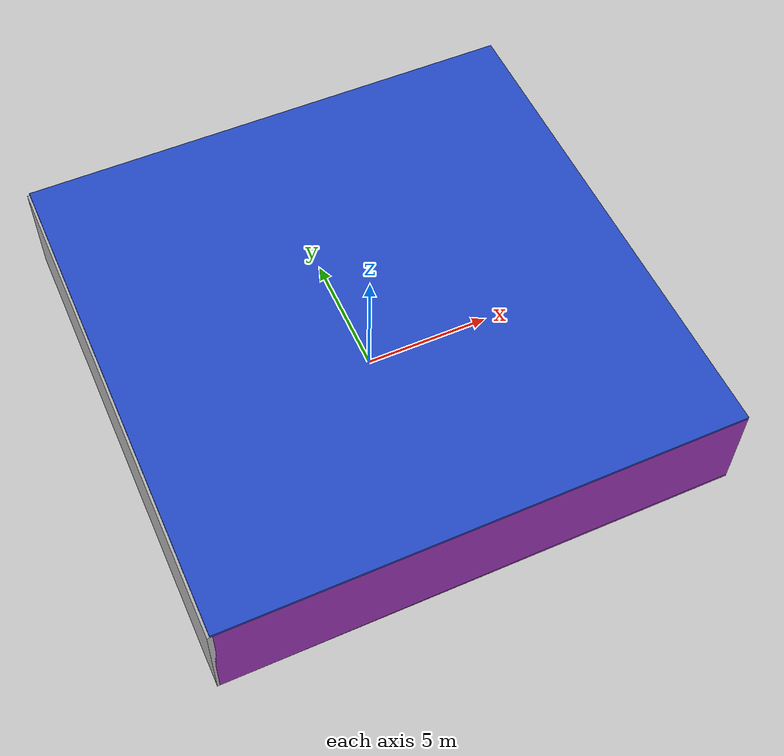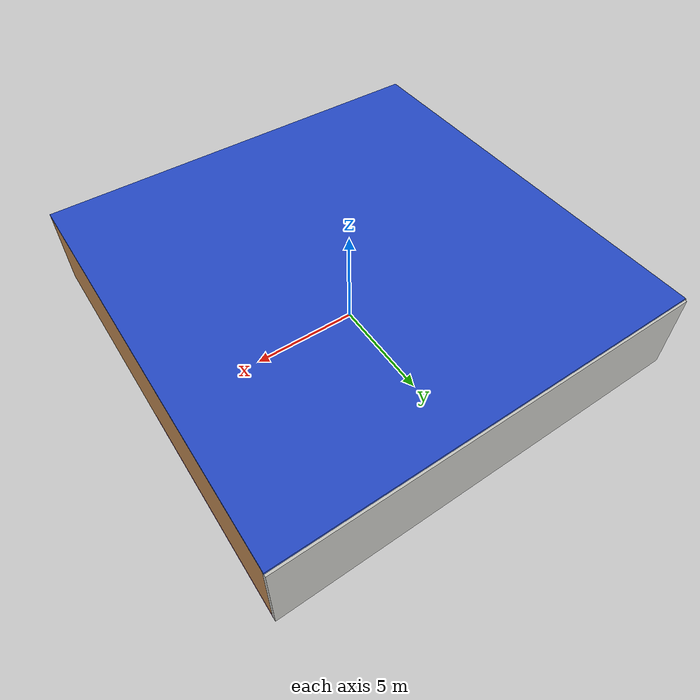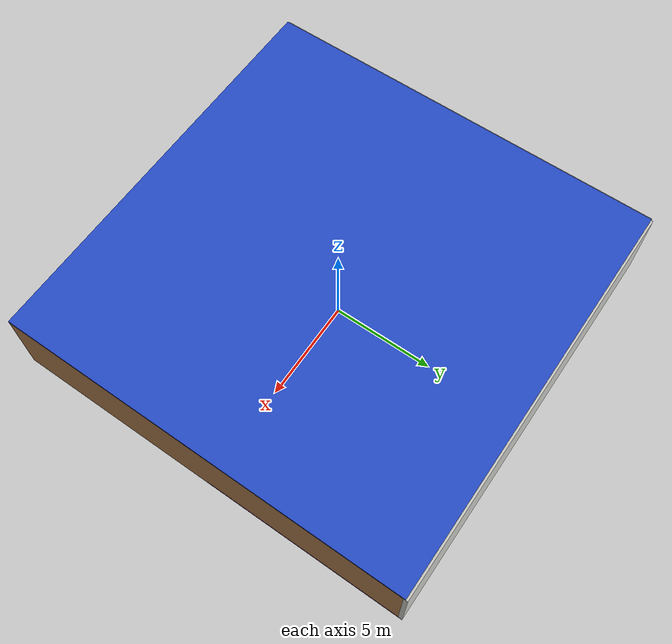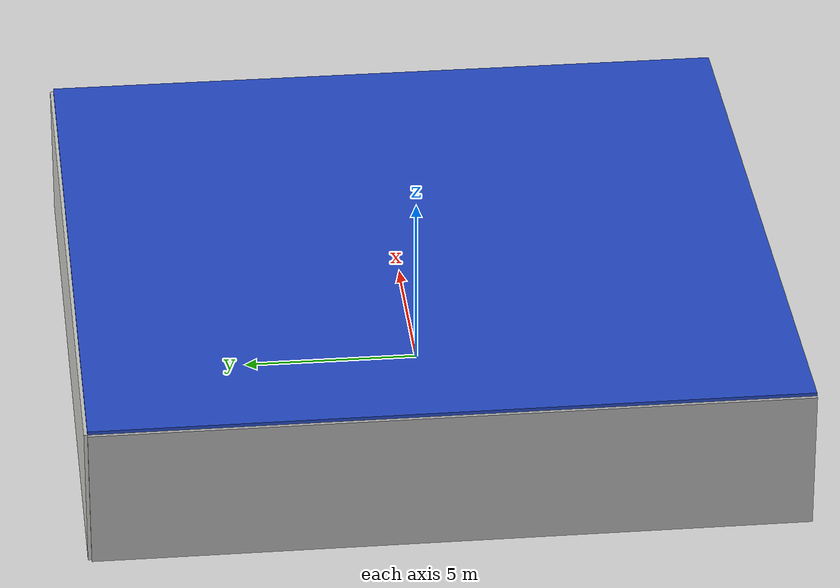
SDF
<sdf version="1.4">
 <world name="default">
  <physics type="ode">
   <max_step_size>0.001</max_step_size>
   <real_time_factor>1</real_time_factor>
   <real_time_update_rate>1000</real_time_update_rate>
   <gravity>0 0 -9.8</gravity>
  </physics>
  <scene><ambient>0.4 0.4 0.4 1</ambient><background>0.7 0.7 0.7 1</background><shadows>1</shadows></scene>
  <model name="Surrounding">
   <static>1</static>
   <link name="Ceiling">
    <collision name="Ceiling_Collision"><geometry><box><size>20 20 0.1</size></box></geometry></collision>
    <visual name="Ceiling_Visual">
     <geometry><box><size>20 20 0.1</size></box></geometry>
     <material>
      <script><uri>file://media/materials/scripts/gazebo.material</uri><name>Gazebo/BlueGlow</name></script>
     </material>
    </visual>
    <pose>0 0 4.05 0 0 0</pose>
   </link>
   <link name="Wall_South">
    <collision name="Wall_South_Collision">
     <geometry><box><size>20 0 4</size></box></geometry>
     <pose>0 0 2 0 -0 0</pose>
    </collision>
    <visual name="Wall_South_Visual">
     <pose>0 0 2 0 -0 0</pose>
     <geometry><box><size>20 0 4</size></box></geometry>
     <material>
      <script><uri>file://media/materials/scripts/gazebo.material</uri><name>Gazebo/PurpleGlow</name></script>
     </material>
    </visual>
    <velocity_decay><linear>0</linear><angular>0</angular></velocity_decay>
    <pose>0 -10 0 0 -0 0</pose>
   </link>
   <link name="Wall_East">
    <collision name="Wall_21_Collision">
     <geometry><box><size>20 0 4</size></box></geometry>
     <pose>0 0 2 0 -0 0</pose>
    </collision>
    <visual name="Wall_21_Visual">
     <pose>0 0 2 0 -0 0</pose>
     <geometry><box><size>20 0 4</size></box></geometry>
     <material>
      <script><uri>file://media/materials/scripts/gazebo.material</uri><name>Gazebo/WoodPallet</name></script>
     </material>
    </visual>
    <velocity_decay><linear>0</linear><angular>0</angular></velocity_decay>
    <pose>10 0 0 0 -0 1.5708</pose>
   </link>
   <link name="Wall_North">
    <collision name="Wall_22_Collision">
     <geometry><box><size>20 0.2 4</size></box></geometry>
     <pose>0 0 2 0 -0 0</pose>
    </collision>
    <visual name="Wall_22_Visual">
     <pose>0 0 2 0 -0 0</pose>
     <geometry><box><size>20 0.2 4</size></box></geometry>
     <material>
      <script><uri>file://media/materials/scripts/gazebo.material</uri><name>Gazebo/CeilingTiled</name></script>
     </material>
    </visual>
    <velocity_decay><linear>0</linear><angular>0</angular></velocity_decay>
    <pose>0 10 0 0 -0 0</pose>
   </link>
   <link name="Wall_West">
    <collision name="Wall_23_Collision">
     <geometry><box><size>20 0.2 4</size></box></geometry>
     <pose>0 0 2 0 -0 0</pose>
    </collision>
    <visual name="Wall_23_Visual">
     <pose>0 0 2 0 -0 0</pose>
     <geometry><box><size>20 0.2 4</size></box></geometry>
     <material>
      <script><uri>file://media/materials/scripts/gazebo.material</uri><name>Gazebo/JointAnchor</name></script>
     </material>
    </visual>
    <velocity_decay><linear>0</linear><angular>0</angular></velocity_decay>
    <pose>-10 0 0 0 0 -1.5708</pose>
   </link>
   <link name="Ground_link">
    <collision name="collision">
     <pose>0 0 .05 0 -0 0</pose>
     <geometry><box><size>20 20 0.1</size></box></geometry>
    </collision>
    <visual name="visual">
     <pose>0 0 .05 0 -0 0</pose>
     <geometry><box><size>20 20 0.1</size></box></geometry>
     <material>
      <script><uri>file://media/materials/scripts/gazebo.material</uri><name>Gazebo/Purple</name></script>
     </material>
    </visual>
   </link>
   <static>1</static>
  </model>
  <spherical_coordinates>
   <surface_model>EARTH_WGS84</surface_model>
   <latitude_deg>0</latitude_deg>
   <longitude_deg>0</longitude_deg>
   <elevation>0</elevation>
   <heading_deg>0</heading_deg>
  </spherical_coordinates>
  <light name="lightball_0" type="diffuse">
   <diffuse>0.8 0.8 0.8 1</diffuse>
   <specular>0.2 0.2 0.2 1</specular>
   <attenuation>
    <range>100</range>
    <constant>0.7</constant>
    <linear>0.01</linear>
    <quadratic>0.001</quadratic>
   </attenuation>
   <direction>-0.5 0.1 -0.9</direction>
   <pose>-1.76912406602 -6.79061378957 3.47772698444 0 0 0</pose>
  </light>
  <light name="lightball_1" type="diffuse">
   <diffuse>0.8 0.8 0.8 1</diffuse>
   <specular>0.2 0.2 0.2 1</specular>
   <attenuation>
    <range>100</range>
    <constant>0.7</constant>
    <linear>0.01</linear>
    <quadratic>0.001</quadratic>
   </attenuation>
   <direction>-0.5 0.1 -0.9</direction>
   <pose>-1.46035533568 -5.12099292304 1.09665814052 0 0 0</pose>
  </light>
  <light name="lightball_2" type="diffuse">
   <diffuse>0.8 0.8 0.8 1</diffuse>
   <specular>0.2 0.2 0.2 1</specular>
   <attenuation>
    <range>100</range>
    <constant>0.7</constant>
    <linear>0.01</linear>
    <quadratic>0.001</quadratic>
   </attenuation>
   <direction>-0.5 0.1 -0.9</direction>
   <pose>5.87438862183 -6.17400001791 3.48235917487 0 0 0</pose>
  </light>
  <light name="lightball_3" type="diffuse">
   <diffuse>0.8 0.8 0.8 1</diffuse>
   <specular>0.2 0.2 0.2 1</specular>
   <attenuation>
    <range>100</range>
    <constant>0.7</constant>
    <linear>0.01</linear>
    <quadratic>0.001</quadratic>
   </attenuation>
   <direction>-0.5 0.1 -0.9</direction>
   <pose>-5.15941582222 -5.27400606327 1.10277995135 0 0 0</pose>
  </light>
  <light name="lightball_4" type="diffuse">
   <diffuse>0.8 0.8 0.8 1</diffuse>
   <specular>0.2 0.2 0.2 1</specular>
   <attenuation>
    <range>100</range>
    <constant>0.7</constant>
    <linear>0.01</linear>
    <quadratic>0.001</quadratic>
   </attenuation>
   <direction>-0.5 0.1 -0.9</direction>
   <pose>-9.42758011292 2.15415116835 3.37181871007 0 0 0</pose>
  </light>
  <light name="lightball_5" type="diffuse">
   <diffuse>0.8 0.8 0.8 1</diffuse>
   <specular>0.2 0.2 0.2 1</specular>
   <attenuation>
    <range>100</range>
    <constant>0.7</constant>
    <linear>0.01</linear>
    <quadratic>0.001</quadratic>
   </attenuation>
   <direction>-0.5 0.1 -0.9</direction>
   <pose>4.71159869668 5.61220337402 3.38258770298 0 0 0</pose>
  </light>
  <light name="lightball_6" type="diffuse">
   <diffuse>0.8 0.8 0.8 1</diffuse>
   <specular>0.2 0.2 0.2 1</specular>
   <attenuation>
    <range>100</range>
    <constant>0.7</constant>
    <linear>0.01</linear>
    <quadratic>0.001</quadratic>
   </attenuation>
   <direction>-0.5 0.1 -0.9</direction>
   <pose>2.42204871531 0.201950319433 1.42232683736 0 0 0</pose>
  </light>
  <light name="lightball_7" type="diffuse">
   <diffuse>0.8 0.8 0.8 1</diffuse>
   <specular>0.2 0.2 0.2 1</specular>
   <attenuation>
    <range>100</range>
    <constant>0.7</constant>
    <linear>0.01</linear>
    <quadratic>0.001</quadratic>
   </attenuation>
   <direction>-0.5 0.1 -0.9</direction>
   <pose>9.69581593702 -9.73013140096 1.00146606201 0 0 0</pose>
  </light>
  <light name="lightball_8" type="diffuse">
   <diffuse>0.8 0.8 0.8 1</diffuse>
   <specular>0.2 0.2 0.2 1</specular>
   <attenuation>
    <range>100</range>
    <constant>0.7</constant>
    <linear>0.01</linear>
    <quadratic>0.001</quadratic>
   </attenuation>
   <direction>-0.5 0.1 -0.9</direction>
   <pose>-5.15505143795 3.28886934156 1.96860486097 0 0 0</pose>
  </light>
  <include>
   <uri>model://textured_shapes</uri>
   <pose>-4.03044587465 -5.01607686637 0 0 0 2.17436463768</pose>
  </include>
  <include><uri>model://cabinet</uri><pose>-1.9378983063 1.15004738359 0 0 0 2.34198824421</pose></include>
  <include>
   <uri>model://robocup_3Dsim_goal</uri>
   <pose>1.99076342231 -7.18947619755 0 0 0 1.246339395</pose>
  </include>
  <include>
   <uri>model://textured_shapes</uri>
   <pose>1.09027781667 1.00952453385 0 0 0 3.12845946709</pose>
  </include>
  <include>
   <uri>model://robocup_3Dsim_goal</uri>
   <pose>7.42266836396 -7.40875332411 0 0 0 1.27721186364</pose>
  </include>
 </world>
</sdf>

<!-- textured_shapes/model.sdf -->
<sdf version="1.6">
  <model name="textured_shapes">
    <pose>0 0 0.5 0 0 0</pose>
    <link name="box">
      <pose>0 -1.5 0 0 0 0</pose>
      <collision name="collision">
        <geometry>
          <box>
            <size>1 1 1</size>
          </box>
        </geometry>
      </collision>
      <visual name="visual">
        <geometry>
          <box>
            <size>1 1 1</size>
          </box>
        </geometry>
        <material>
          <script>
            <uri>model://../model_source/models/textured_shapes/materials/scripts</uri>
            <uri>model://../model_source/models/textured_shapes/materials/textures</uri>
            <name>TexturedShape/Squares</name>
          </script>
        </material>
      </visual>
    </link>
    <link name="sphere">
      <collision name="collision">
        <geometry>
          <sphere>
            <radius>0.5</radius>
          </sphere>
        </geometry>
      </collision>
      <visual name="visual">
        <geometry>
          <sphere>
            <radius>0.5</radius>
          </sphere>
        </geometry>
        <material>
          <script>
            <uri>model://../model_source/models/textured_shapes/materials/scripts</uri>
            <uri>model://../model_source/models/textured_shapes/materials/textures</uri>
            <name>TexturedShape/Squares</name>
          </script>
        </material>
      </visual>
    </link>
    <link name="cylinder">
      <pose>0 1.5 0 0 0 0</pose>
      <collision name="collision">
        <geometry>
          <cylinder>
            <radius>0.5</radius>
            <length>1</length>
          </cylinder>
        </geometry>
      </collision>
      <visual name="visual">
        <geometry>
          <cylinder>
            <radius>0.5</radius>
            <length>1</length>
          </cylinder>
        </geometry>
        <material>
          <script>
            <uri>model://../model_source/models/textured_shapes/materials/scripts</uri>
            <uri>model://../model_source/models/textured_shapes/materials/textures</uri>
            <name>TexturedShape/Squares</name>
          </script>
        </material>
      </visual>
    </link>
  </model>
</sdf>

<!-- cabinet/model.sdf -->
<sdf version="1.5">
  <model name="cabinet">
    <static>true</static>
    <link name="cabinet_bottom_plate">
      <inertial>
        <pose>0 0 -1 0 0 0</pose>
        <inertia>
          <ixx>2.050000</ixx>
          <ixy>0</ixy>
          <ixz>0</ixz>
          <iyy>2.050000</iyy>
          <iyz>0</iyz>
          <izz>2.050000</izz>
        </inertia>
        <mass>25.000000</mass>
      </inertial>
      <collision name="cabinet_bottom_plate_geom">
        <pose>0 0 0.010000 0 0 0</pose>
        <geometry>
          <box>
            <size>0.450000 0.450000 0.020000</size>
          </box>
        </geometry>
      </collision>
      <visual name="cabinet_bottom_plate_geom_visual">
        <pose>0 0 0.010000 0 0 0</pose>
        <geometry>
          <box>
            <size>0.450000 0.450000 0.020000</size>
          </box>
        </geometry>
        <material>
          <script>
            <uri>model://media/materials/scripts/gazebo.material</uri>
            <name>Gazebo/Wood</name>
          </script>
        </material>
      </visual>
      <collision name="cabinet_bottom_plate_geom_cabinet_back_plate">
        <pose>0.235000 0 0.510000 0 0 0</pose>
        <geometry>
          <box>
            <size>0.020000 0.450000 1.020000</size>
          </box>
        </geometry>
      </collision>
      <visual name="cabinet_bottom_plate_geom_cabinet_back_plate_visual">
        <pose>0.235000 0 0.510000 0 0 0</pose>
        <geometry>
          <box>
            <size>0.020000 0.450000 1.020000</size>
          </box>
        </geometry>
        <material>
          <script>
            <uri>model://media/materials/scripts/gazebo.material</uri>
            <name>Gazebo/Wood</name>
          </script>
        </material>
      </visual>
      <collision name="cabinet_bottom_plate_geom_cabinet_left_plate">
        <pose>0 0.235000 0.510000 0 0 0</pose>
        <geometry>
          <box>
            <size>0.450000 0.020000 1.020000</size>
          </box>
        </geometry>
      </collision>
      <visual name="cabinet_bottom_plate_geom_cabinet_left_plate_visual">
        <pose>0 0.235000 0.510000 0 0 0</pose>
        <geometry>
          <box>
            <size>0.450000 0.020000 1.020000</size>
          </box>
        </geometry>
        <material>
          <script>
            <uri>model://media/materials/scripts/gazebo.material</uri>
            <name>Gazebo/Wood</name>
          </script>
        </material>
      </visual>
      <collision name="cabinet_bottom_plate_geom_cabinet_middle_plate">
        <pose>0 0 0.510000 0 0 0</pose>
        <geometry>
          <box>
            <size>0.450000 0.450000 0.020000</size>
          </box>
        </geometry>
      </collision>
      <visual name="cabinet_bottom_plate_geom_cabinet_middle_plate_visual">
        <pose>0 0 0.510000 0 0 0</pose>
        <geometry>
          <box>
            <size>0.450000 0.450000 0.020000</size>
          </box>
        </geometry>
        <material>
          <script>
            <uri>model://media/materials/scripts/gazebo.material</uri>
            <name>Gazebo/Wood</name>
          </script>
        </material>
      </visual>
      <collision name="cabinet_bottom_plate_geom_cabinet_right_plate">
        <pose>0 -0.235000 0.510000 0 0 0</pose>
        <geometry>
          <box>
            <size>0.450000 0.020000 1.020000</size>
          </box>
        </geometry>
      </collision>
      <visual name="cabinet_bottom_plate_geom_cabinet_right_plate_visual">
        <pose>0 -0.235000 0.510000 0 0 0</pose>
        <geometry>
          <box>
            <size>0.450000 0.020000 1.020000</size>
          </box>
        </geometry>
        <material>
          <script>
            <uri>model://media/materials/scripts/gazebo.material</uri>
            <name>Gazebo/Wood</name>
          </script>
        </material>
      </visual>
      <collision name="cabinet_bottom_plate_geom_cabinet_top_plate">
        <pose>0 0 1.010000 0 0 0</pose>
        <geometry>
          <box>
            <size>0.450000 0.450000 0.020000</size>
          </box>
        </geometry>
      </collision>
      <visual name="cabinet_bottom_plate_geom_cabinet_top_plate_visual">
        <pose>0 0 1.010000 0 0 0</pose>
        <geometry>
          <box>
            <size>0.450000 0.450000 0.020000</size>
          </box>
        </geometry>
        <material>
          <script>
            <uri>model://media/materials/scripts/gazebo.material</uri>
            <name>Gazebo/Wood</name>
          </script>
        </material>
      </visual>
    </link>
  </model>
</sdf>

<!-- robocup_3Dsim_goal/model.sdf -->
<sdf version="1.5">
  <model name="robocup_3d_goal">
    <static>true</static>
    <link name="left_post">
      <pose>0 1.05 0.45 0 0 0</pose>
      <collision name="collision">
        <geometry>
          <cylinder>
            <radius>0.05</radius>
            <length>0.9</length>
          </cylinder>
        </geometry>
      </collision>
      <visual name="visual">
        <geometry>
          <cylinder>
            <radius>0.05</radius>
            <length>0.9</length>
          </cylinder>
        </geometry>
        <material>
          <script>
            <uri>file://media/materials/scripts/gazebo.material</uri>
            <name>Gazebo/ZincYellow</name>
          </script>
        </material>
      </visual>
    </link>
    <link name="left_support_horiz_lower">
      <pose>0.30 1.05 0.01 0 0 0</pose>
      <collision name="collision">
        <geometry>
          <box>
            <size>0.50 0.02 0.02</size>
          </box>
        </geometry>
      </collision>
      <visual name="visual">
        <geometry>
          <box>
            <size>0.50 0.02 0.02</size>
          </box>
        </geometry>
        <material>
          <script>
            <uri>file://media/materials/scripts/gazebo.material</uri>
            <name>Gazebo/White</name>
          </script>
        </material>
      </visual>
    </link>
    <link name="left_support_horiz_upper">
      <pose>0.30 1.05 0.79 0 0 0</pose>
      <collision name="collision">
        <geometry>
          <box>
            <size>0.50 0.02 0.02</size>
          </box>
        </geometry>
      </collision>
      <visual name="visual">
        <geometry>
          <box>
            <size>0.50 0.02 0.02</size>
          </box>
        </geometry>
        <material>
          <script>
            <uri>file://media/materials/scripts/gazebo.material</uri>
            <name>Gazebo/White</name>
          </script>
        </material>
      </visual>
    </link>
    <link name="left_support_vertical">
      <pose>0.56 1.05 0.4 0 1.5708 0</pose>
      <collision name="collision">
        <geometry>
          <box>
            <size>0.80 0.02 0.02</size>
          </box>
        </geometry>
      </collision>
      <visual name="visual">
        <geometry>
          <box>
            <size>0.80 0.02 0.02</size>
          </box>
        </geometry>
        <material>
          <script>
            <uri>file://media/materials/scripts/gazebo.material</uri>
            <name>Gazebo/White</name>
          </script>
        </material>
      </visual>
    </link>
    <link name="right_support_horiz_lower">
      <pose>0.30 -1.05 0.01 0 0 0</pose>
      <collision name="collision">
        <geometry>
          <box>
            <size>0.50 0.02 0.02</size>
          </box>
        </geometry>
      </collision>
      <visual name="visual">
        <geometry>
          <box>
            <size>0.50 0.02 0.02</size>
          </box>
        </geometry>
        <material>
          <script>
            <uri>file://media/materials/scripts/gazebo.material</uri>
            <name>Gazebo/White</name>
          </script>
        </material>
      </visual>
    </link>
    <link name="right_support_horiz_upper">
      <pose>0.30 -1.05 0.79 0 0 0</pose>
      <collision name="collision">
        <geometry>
          <box>
            <size>0.50 0.02 0.02</size>
          </box>
        </geometry>
      </collision>
      <visual name="visual">
        <geometry>
          <box>
            <size>0.50 0.02 0.02</size>
          </box>
        </geometry>
        <material>
          <script>
            <uri>file://media/materials/scripts/gazebo.material</uri>
            <name>Gazebo/White</name>
          </script>
        </material>
      </visual>
    </link>
    <link name="right_support_vertical">
      <pose>0.56 -1.05 0.4 0 1.5708 0</pose>
      <collision name="collision">
        <geometry>
          <box>
            <size>0.80 0.02 0.02</size>
          </box>
        </geometry>
      </collision>
      <visual name="visual">
        <geometry>
          <box>
            <size>0.80 0.02 0.02</size>
          </box>
        </geometry>
        <material>
          <script>
            <uri>file://media/materials/scripts/gazebo.material</uri>
            <name>Gazebo/White</name>
          </script>
        </material>
      </visual>
    </link>
    <link name="center_support_horiz_lower">
      <pose>0.56 0 0.01 0 1.5708 0</pose>
      <collision name="collision">
        <geometry>
          <box>
            <size>0.02 2.08 0.02</size>
          </box>
        </geometry>
      </collision>
      <visual name="visual">
        <geometry>
          <box>
            <size>0.02 2.08 0.02</size>
          </box>
        </geometry>
        <material>
          <script>
            <uri>file://media/materials/scripts/gazebo.material</uri>
            <name>Gazebo/White</name>
          </script>
        </material>
      </visual>
    </link>
    <link name="center_support_horiz_upper">
      <pose>0.56 0 0.79 0 1.5708 0</pose>
      <collision name="collision">
        <geometry>
          <box>
            <size>0.02 2.08 0.02</size>
          </box>
        </geometry>
      </collision>
      <visual name="visual">
        <geometry>
          <box>
            <size>0.02 2.08 0.02</size>
          </box>
        </geometry>
        <material>
          <script>
            <uri>file://media/materials/scripts/gazebo.material</uri>
            <name>Gazebo/White</name>
          </script>
        </material>
      </visual>
    </link>
    <link name="right_post">
      <pose>0 -1.05 0.45 0 0 0</pose>
      <collision name="collision">
        <geometry>
          <cylinder>
            <radius>0.05</radius>
            <length>0.9</length>
          </cylinder>
        </geometry>
      </collision>
      <visual name="visual">
        <geometry>
          <cylinder>
            <radius>0.05</radius>
            <length>0.9</length>
          </cylinder>
        </geometry>
        <material>
          <script>
            <uri>file://media/materials/scripts/gazebo.material</uri>
            <name>Gazebo/ZincYellow</name>
          </script>
        </material>
      </visual>
    </link>
    <link name="crossbar">
      <pose>0 0 0.85 1.57 1.57 0</pose>
      <collision name="collision">
        <geometry>
          <cylinder>
            <radius>0.05</radius>
            <length>2.0</length>
          </cylinder>
        </geometry>
      </collision>
      <visual name="visual">
        <geometry>
          <cylinder>
            <radius>0.05</radius>
            <length>2.0</length>
          </cylinder>
        </geometry>
        <material>
          <script>
            <uri>file://media/materials/scripts/gazebo.material</uri>
            <name>Gazebo/ZincYellow</name>
          </script>
        </material>
      </visual>
    </link>
    <link name="center_net">
      <pose>0.56 0 0.40 0 0 0</pose>
      <collision name="collision">
        <geometry>
          <box>
            <size>0.01 2.1 0.80</size>
          </box>
        </geometry>
      </collision>
      <visual name="visual">
        <geometry>
          <box>
            <size>0.01 2.1 0.80</size>
          </box>
        </geometry>
        <material>
          <script>
            <uri>model://../model_source/models/robocup09_spl_field/materials/scripts/</uri>
            <uri>model://../model_source/models/robocup09_spl_field/materials/textures/</uri>
            <name>RoboCup/Net</name>
          </script>
        </material>
      </visual>
    </link>
    <link name="left_net">
      <pose>0.30 1.05 0.40 0 0 0</pose>
      <collision name="collision">
        <geometry>
          <box>
            <size>0.50 0.01 0.76</size>
          </box>
        </geometry>
      </collision>
      <visual name="visual">
        <geometry>
          <box>
            <size>0.50 0.01 0.76</size>
          </box>
        </geometry>
        <material>
          <script>
            <uri>model://../model_source/models/robocup09_spl_field/materials/scripts/</uri>
            <uri>model://../model_source/models/robocup09_spl_field/materials/textures/</uri>
            <name>RoboCup/Net</name>
          </script>
        </material>
      </visual>
    </link>
    <link name="right_net">
      <pose>0.30 -1.05 0.40 0 0 0</pose>
      <collision name="collision">
        <geometry>
          <box>
            <size>0.50 0.01 0.76</size>
          </box>
        </geometry>
      </collision>
      <visual name="visual">
        <geometry>
          <box>
            <size>0.50 0.01 0.76</size>
          </box>
        </geometry>
        <material>
          <script>
            <uri>model://../model_source/models/robocup09_spl_field/materials/scripts/</uri>
            <uri>model://../model_source/models/robocup09_spl_field/materials/textures/</uri>
            <name>RoboCup/Net</name>
          </script>
        </material>
      </visual>
    </link>
  </model>
</sdf>
